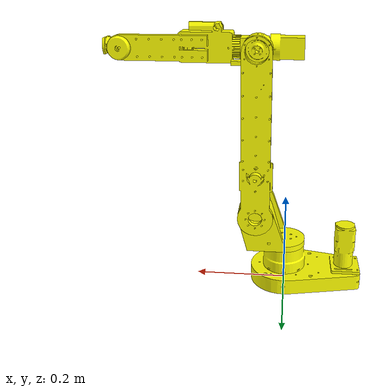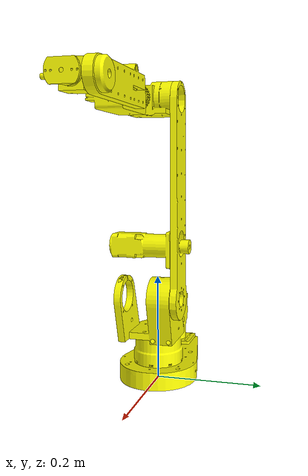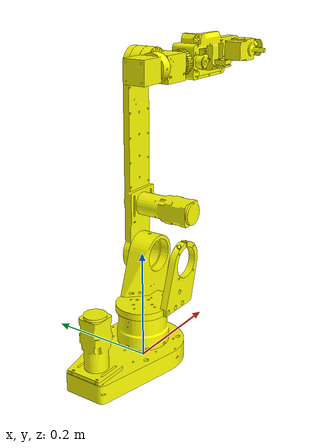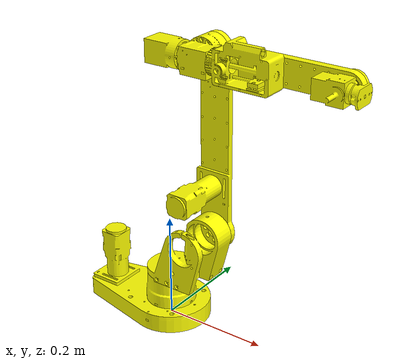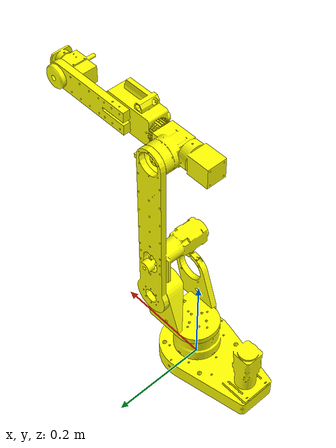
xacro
<?xml version="1.0"?>
<robot xmlns:xacro="http://wiki.ros.org/xacro" name="ar4">
  <xacro:arg name="serial_port" default="/dev/ttyACM0"/>
  <xacro:arg name="arduino_serial_port" default="/dev/ttyUSB0"/>
  <xacro:arg name="calibrate" default="True"/>
  <xacro:arg name="include_gripper" default="false"/>
  <xacro:include filename="$(find ar_description)/urdf/ar_macro.xacro"/>
  <xacro:include filename="$(find ar_description)/urdf/ar.ros2_control.xacro"/>

  <link name="world" />
  <xacro:ar_robot
    parent="world"
  >
    <!-- robot_parameters_file="$(find ar_description)/config/ar4.yaml" -->
    <origin xyz="0 0 0" rpy="0 0 0" />
  </xacro:ar_robot>

  <xacro:ar_ros2_control
    name="ar4"
    plugin_name="ar_hardware_interface/ARHardwareInterface"
    serial_port="$(arg serial_port)"
    calibrate="$(arg calibrate)"
    joint_offset_parameters_file="$(find ar_hardware_interface)/config/joint_offsets/ar4.yaml"
  />

  <xacro:if value="$(arg include_gripper)">
    <xacro:include filename="$(find ar_description)/urdf/ar_gripper_macro.xacro"/>
    <xacro:include filename="$(find ar_description)/urdf/ar_gripper.ros2_control.xacro"/>

    <xacro:ar_gripper parent="ee_link" />

    <xacro:ar_gripper_ros2_control
      name="ar_servo_gripper"
      plugin_name="ar_hardware_interface/ARServoGripperHWInterface"
      serial_port="$(arg arduino_serial_port)"
    />
  </xacro:if>

</robot>

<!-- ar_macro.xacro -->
<robot xmlns:xacro="http://wiki.ros.org/xacro">
  <xacro:macro name="ar_robot" params="
    parent
    *origin
  ">

    <!-- robot_parameters_file -->

    <joint name="base_joint" type="fixed">
      <xacro:insert_block name="origin" />
      <parent link="${parent}"/>
      <child link="base_link" />
    </joint>

    <link name="base_link">
      <inertial>
        <origin rpy="0 0 0" xyz="-4.6941E-06 0.054174 0.038824"/>
        <mass value="0.7102"/>
        <inertia ixx="0.0039943" ixy="3.697E-07" ixz="-5.7364E-08" iyy="0.0014946" iyz="-0.00036051" izz="0.0042554"/>
      </inertial>
      <visual>
        <origin rpy="${pi/2} 0 0" xyz="0 0 0"/>
        <geometry>
          <mesh filename="file://$(find ar_description)/meshes/ar4/base_link.STL"/>
        </geometry>
        <material name="">
          <color rgba="1 1 0 1"/>
        </material>
      </visual>
      <collision>
        <origin rpy="${pi/2} 0 0" xyz="0 0 0"/>
        <geometry>
          <mesh filename="file://$(find ar_description)/meshes/ar4/base_link.STL"/>
        </geometry>
      </collision>
    </link>
    <link name="link_1">
      <inertial>
        <origin rpy="0 0 0" xyz="-0.022706 0.04294 -0.12205"/>
        <mass value="0.88065"/>
        <inertia ixx="0.0034" ixy="0.00042296" ixz="-0.00089231" iyy="0.0041778" iyz="0.0010848" izz="0.0027077"/>
      </inertial>
      <visual>
        <origin rpy="0 0 0" xyz="0 0 0"/>
        <geometry>
          <mesh filename="file://$(find ar_description)/meshes/ar4/link_1.STL"/>
        </geometry>
        <material name="">
          <color rgba="1 1 0 1"/>
        </material>
      </visual>
      <collision>
        <origin rpy="0 0 0" xyz="0 0 0"/>
        <geometry>
          <mesh filename="file://$(find ar_description)/meshes/ar4/link_1.STL"/>
        </geometry>
      </collision>
    </link>
    <joint name="joint_1" type="revolute">
      <origin rpy="${pi/2} 0 0" xyz="0 0 0"/>
      <parent link="base_link"/>
      <child link="link_1"/>
      <axis xyz="0 -1 0"/>
      <limit lower="${-184.0 / 180.0 * pi}" upper="${150.0 / 180.0 * pi}" effort="0" velocity="0.5"/>
    </joint>
    <link name="link_2">
      <inertial>
        <origin rpy="0 0 0" xyz="0.064818 -0.11189 -0.038671"/>
        <mass value="0.57738"/>
        <inertia ixx="0.0047312" ixy="0.0022624" ixz="0.00032144" iyy="0.0020836" iyz="-0.00056569" izz="0.0056129"/>
      </inertial>
      <visual>
        <origin rpy="0 0 0" xyz="0 0 0"/>
        <geometry>
          <mesh filename="file://$(find ar_description)/meshes/ar4/link_2.STL"/>
        </geometry>
        <material name="">
          <color rgba="1 1 0 1"/>
        </material>
      </visual>
      <collision>
        <origin rpy="0 0 0" xyz="0 0 0"/>
        <geometry>
          <mesh filename="file://$(find ar_description)/meshes/ar4/link_2.STL"/>
        </geometry>
      </collision>
    </link>
    <joint name="joint_2" type="revolute">
      <origin rpy="0 0 0" xyz="0.06384 0.1736 0"/>
      <parent link="link_1"/>
      <child link="link_2"/>
      <axis xyz="0 0 -1"/>
      <limit lower="${-47.0 / 180.0 * pi}" upper="${90.0 / 180.0 * pi}" effort="0.5" velocity="0.5"/>
    </joint>
    <link name="link_3">
      <inertial>
        <origin rpy="0 0 0" xyz="-0.00029765 -0.023661 -0.0019125"/>
        <mass value="0.1787"/>
        <inertia ixx="0.0001685" ixy="-2.7713E-05" ixz="5.6885E-06" iyy="0.00012865" iyz="2.9256E-05" izz="0.00020744"/>
      </inertial>
      <visual>
        <origin rpy="0 0 0" xyz="0 0 0"/>
        <geometry>
          <mesh filename="file://$(find ar_description)/meshes/ar4/link_3.STL"/>
        </geometry>
        <material name="">
          <color rgba="1 1 0 1"/>
        </material>
      </visual>
      <collision>
        <origin rpy="0 0 0" xyz="0 0 0"/>
        <geometry>
          <mesh filename="file://$(find ar_description)/meshes/ar4/link_3.STL"/>
        </geometry>
      </collision>
    </link>
    <joint name="joint_3" type="revolute">
      <origin rpy="0 0 0" xyz="0 0.34997 0.0046"/>
      <parent link="link_2"/>
      <child link="link_3"/>
      <axis xyz="0 0 -1"/>
      <limit lower="${-90.0 / 180.0 * pi}" upper="${62.0 / 180.0 * pi}" effort="0" velocity="0.5"/>
    </joint>
    <link name="link_4">
      <inertial>
        <origin rpy="0 0 0" xyz="-0.0016798 -0.00057319 -0.074404"/>
        <mass value="0.34936"/>
        <inertia ixx="0.0030532" ixy="-1.8615E-05" ixz="-7.0047E-05" iyy="0.0031033" iyz="-2.3301E-05" izz="0.00022264"/>
      </inertial>
      <visual>
        <origin rpy="0 0 0" xyz="0 0 0"/>
        <geometry>
          <mesh filename="file://$(find ar_description)/meshes/ar4/link_4.STL"/>
        </geometry>
        <material name="">
          <color rgba="1 1 0 1"/>
        </material>
      </visual>
      <collision>
        <origin rpy="0 0 0" xyz="0 0 0"/>
        <geometry>
          <mesh filename="file://$(find ar_description)/meshes/ar4/link_4.STL"/>
        </geometry>
      </collision>
    </link>
    <joint name="joint_4" type="revolute">
      <origin rpy="0 0 0" xyz="0 0 0.0"/>
      <parent link="link_3"/>
      <child link="link_4"/>
      <axis xyz="1 0 0"/>
      <limit lower="${-161.0 / 180.0 * pi}" upper="${169.0 / 180.0 * pi}" effort="0" velocity="0.5"/>
    </joint>
    <link name="link_5">
      <inertial>
        <origin rpy="0 0 0" xyz="0.0015066 -1.3102E-05 -0.012585"/>
        <mass value="0.11562"/>
        <inertia ixx="5.5035E-05" ixy="-1.019E-08" ixz="-2.6243E-06" iyy="8.2921E-05" iyz="1.4437E-08" izz="5.2518E-05"/>
      </inertial>
      <visual>
        <origin rpy="0 0 0" xyz="0 0 0"/>
        <geometry>
          <mesh filename="file://$(find ar_description)/meshes/ar4/link_5.STL"/>
        </geometry>
        <material name="">
          <color rgba="1 1 0 1"/>
        </material>
      </visual>
      <collision>
        <origin rpy="0 0 0" xyz="0 0 0"/>
        <geometry>
          <mesh filename="file://$(find ar_description)/meshes/ar4/link_5.STL"/>
        </geometry>
      </collision>
    </link>
    <joint name="joint_5" type="revolute">
      <origin rpy="0 0 0" xyz="0.27435 0 0"/>
      <parent link="link_4"/>
      <child link="link_5"/>
      <axis xyz="0 0 -1"/>
      <limit lower="${-100.0 / 180.0 * pi}" upper="${100.0 / 180.0 * pi}" effort="0" velocity="1.0"/>
    </joint>
    <link name="link_6">
      <inertial>
        <origin rpy="0 0 0" xyz="2.9287E-10 -1.6472E-09 0.0091432"/>
        <mass value="0.013863"/>
        <inertia ixx="1.3596E-06" ixy="3.0585E-13" ixz="5.7102E-14" iyy="1.7157E-06" iyz="6.3369E-09" izz="2.4332E-06"/>
      </inertial>
      <visual>
        <origin rpy="0 0 0" xyz="0 0 0"/>
        <geometry>
          <mesh filename="file://$(find ar_description)/meshes/ar4/link_6.STL"/>
        </geometry>
        <material name="">
          <color rgba="1 1 0 1"/>
        </material>
      </visual>
      <collision>
        <origin rpy="0 0 0" xyz="0 0 0"/>
        <geometry>
          <mesh filename="file://$(find ar_description)/meshes/ar4/link_6.STL"/>
        </geometry>
      </collision>
    </link>
    <joint name="joint_6" type="revolute">
      <origin rpy="0 0 0" xyz="0.0384 0 0"/>
      <parent link="link_5"/>
      <child link="link_6"/>
      <axis xyz="1 0 0"/>
      <limit lower="${-170.0 / 180.0 * pi}" upper="${150.0 / 180.0 * pi}" effort="0" velocity="1.0"/>
    </joint>

    <!-- center of the end effector mounting surface on link_6 -->
    <link name="ee_link" />
    <joint name="ee_joint" type="fixed">
      <parent link="link_6" />
      <child link="ee_link" />
      <origin xyz="0 0 0.0" rpy="0 0 0" />
    </joint>

  </xacro:macro>
</robot>
